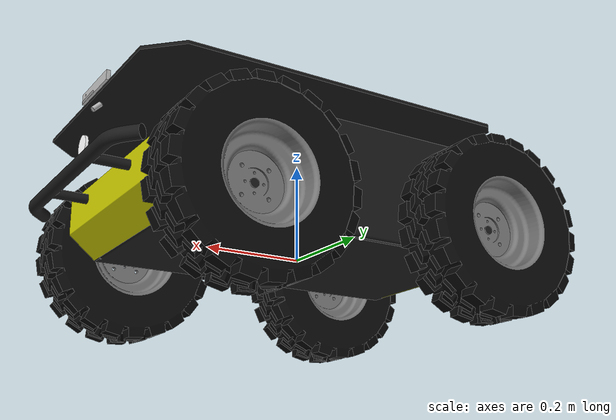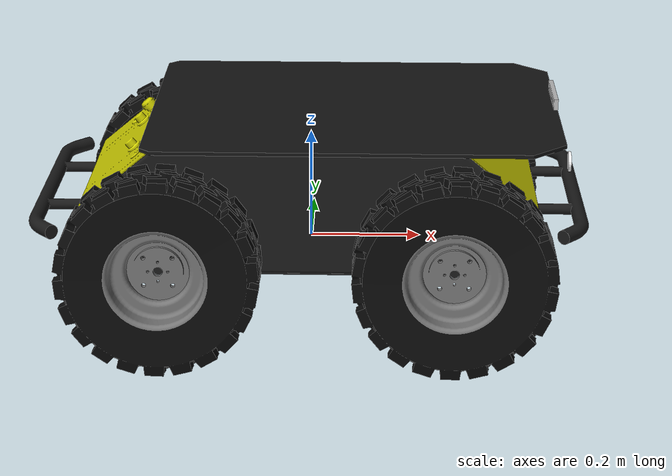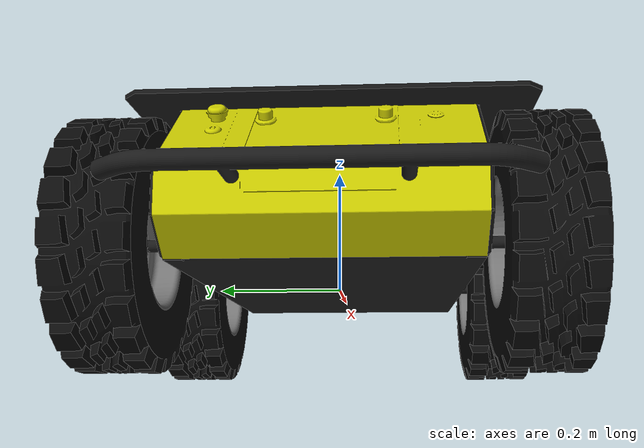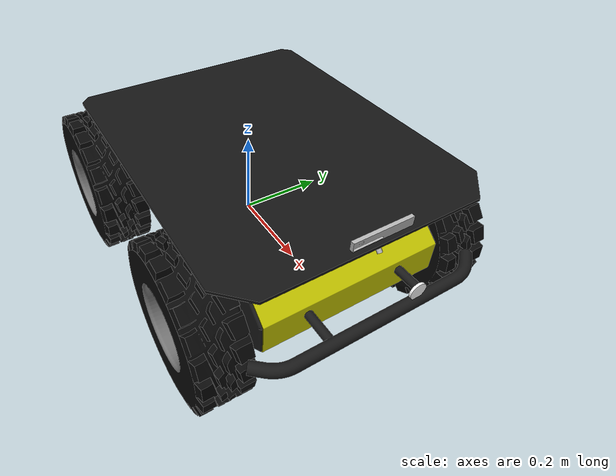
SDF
<?xml version="1.0" encoding="UTF-8"?>
<sdf version="1.8">
	<model name="igt_one">
		<link name="base_link">
			<pose>0 0 0 0 0 0</pose>
			<inertial>
				<pose>0 0 0.062329 0 0 0</pose>
				<mass>46.064</mass>
				<inertia>
					<ixx>0.615397</ixx>
					<ixy>-0.0240585</ixy>
					<ixz>-0.120749</ixz>
					<iyy>1.75388</iyy>
					<iyz>-0.0028322</iyz>
					<izz>2.03641</izz>
				</inertia>
			</inertial>

			<collision name="base_link_collision">
				<pose>0 0 0.12 0 0 0</pose>
				<geometry>
				<box>
					<size>0.9874 0.5709 0.05</size>
				</box>
				</geometry>
			</collision>

			<collision name="base_link_collision_bottom">
				<pose>0 0 0.046 0 0 0</pose>
				<geometry>
				<box>
					<size>0.80 0.5709 0.095</size>
				</box>
				</geometry>
			</collision>

			<collision name="base_link_collision_1">
				<pose>0 0 0.185625 0 0 0</pose>
				<geometry>
				<box>
					<size>0.78992 0.5709 0.12375</size>
				</box>
				</geometry>
			</collision>

			<collision name="base_link_fixed_joint_lump__lidar_collision_1">
				<pose>0 0 0 0 -0 0</pose>
				<geometry>
					<mesh>
						<scale>0.001 0.001 0.001</scale>
						<uri>model://igt_one/meshes/lidar.stl</uri>
					</mesh>
				</geometry>
				<surface>
					<contact>
						<ode/>
					</contact>
					<friction>
						<ode>
							<mu>1</mu>
							<mu2>1</mu2>
						</ode>
					</friction>
				</surface>
			</collision>

			<collision name="base_link_fixed_joint_lump__d435_link_collision_4">
				<pose>0 0 0.5125 0 -0 0</pose>
				<geometry>
					<box>
						<size>0.02505 0.09 0.025</size>
					</box>
				</geometry>
				<surface>
					<contact>
						<ode>
							<kp>1e+13</kp>
							<kd>1</kd>
						</ode>
					</contact>
					<friction>
						<ode>
							<mu2>1</mu2>
							<fdir1>0 0 0</fdir1>
						</ode>
					</friction>
				</surface>
			</collision>

			<collision name="base_link_fixed_joint_lump__camera/camera_link_collision_2">
				<pose>0.488 0 0.272 0 0 0</pose>
				<geometry>
				<box>
					<size>0.0078 0.13 0.0192</size>
				</box>
				</geometry>
				<surface>
				<contact>
					<ode>
					<kp>1e+13</kp>
					<kd>1</kd>
					</ode>
				</contact>
				<friction>
					<ode>
					<mu2>1</mu2>
					<fdir1>0 0 0</fdir1>
					</ode>
				</friction>
				</surface>
			</collision>

			<collision name="base_link_fixed_joint_lump__top_plate_link_collision_3">
				<pose>0.0812 0 0.245 0 0 0</pose>
				<geometry>
				<mesh>
					<scale>1 1 1</scale>
					<uri>file:///home/jasonwoo/colcon_ws/src/ros2-igt/igt_ignition/igt_one/meshes/top_plate.dae</uri>
				</mesh>
				</geometry>
			</collision>

			<collision name="base_link_fixed_joint_lump__top_plate_link_collision_4">
				<pose>0.0812 0 0.245 0 0 0</pose>
				<geometry>
				<box>
					<size>0.32 0.41 0.09</size>
				</box>
				</geometry>
			</collision>

			<visual name="base_link_visual">
				<pose>0 0 0 0 -0 0</pose>
				<geometry>
				<mesh>
					<scale>1 1 1</scale>
					<uri>file:///home/jasonwoo/colcon_ws/src/ros2-igt/igt_ignition/igt_one/meshes/base_link.dae</uri>
				</mesh>
				</geometry>
			</visual>

			<visual name="base_link_fixed_joint_lump__d435_link_visual_4">
				<pose>0.438 0 0.272 0 0 0</pose>
				<geometry>
				<mesh>
					<uri>file:///home/jasonwoo/colcon_ws/src/ros2-igt/igt_ignition/igt_one/meshes/realsense.dae</uri>
				</mesh>
				</geometry>
			</visual>

			<visual name="base_link_fixed_joint_lump__lidar_visual_1">
				<pose>0.435 0 0.235 -2.35619 0 -1.5708</pose>
				<geometry>
				<cylinder>
					<length>0.02</length>
					<radius>0.005</radius>
				</cylinder>
				</geometry>
			</visual>

			<visual name="base_link_fixed_joint_lump__front_bumper_link_visual_3">
				<pose>0.48 0 0.091 0 0 0</pose>
				<geometry>
				<mesh>
					<scale>1 1 1</scale>
					<uri>file:///home/jasonwoo/colcon_ws/src/ros2-igt/igt_ignition/igt_one/meshes/bumper.dae</uri>
				</mesh>
				</geometry>
			</visual>

			<visual name="base_link_fixed_joint_lump__rear_bumper_link_visual_4">
				<pose>-0.48 0 0.091 0 0 3.14159</pose>
				<geometry>
				<mesh>
					<scale>1 1 1</scale>
					<uri>file:///home/jasonwoo/colcon_ws/src/ros2-igt/igt_ignition/igt_one/meshes/bumper.dae</uri>
				</mesh>
				</geometry>
			</visual>

			<visual name="base_link_fixed_joint_lump__top_chassis_link_visual_5">
				<pose>0 0 0 0 -0 0</pose>
				<geometry>
				<mesh>
					<scale>1 1 1</scale>
					<uri>file:///home/jasonwoo/colcon_ws/src/ros2-igt/igt_ignition/igt_one/meshes/top_chassis.dae</uri>
				</mesh>
				</geometry>
			</visual>

			<visual name="base_link_fixed_joint_lump__top_plate_link_visual_6">
				<pose>0.0812 0 0.245 0 -0 0</pose>
				<geometry>
				<mesh>
					<scale>1 1 1</scale>
					<uri>file:///home/jasonwoo/colcon_ws/src/ros2-igt/igt_ignition/igt_one/meshes/top_plate.dae</uri>
				</mesh>
				</geometry>
			</visual>

			<sensor name="front_lidar" type="gpu_lidar">
				<pose>0.278738 0 0.475 0 0 0</pose>
				<topic>/model/igt_one/laserscan</topic>
				<visualize>0</visualize>
				<update_rate>10</update_rate>
				<always_on>1</always_on>
				<ray>
					<scan>
						<horizontal>
							<samples>720</samples>
							<resolution>1</resolution>
							<min_angle>-1.8326</min_angle>
							<max_angle>1.8326</max_angle>
						</horizontal>
					</scan>
					<range>
						<min>0.05</min>
						<max>20</max>
						<resolution>0.01</resolution>
					</range>
					<noise>
						<type>gaussian</type>
						<mean>0</mean>
						<stddev>0.01</stddev>
					</noise>
				</ray>
			</sensor>

			<sensor name="d435_color" type="camera">
				<always_on>1</always_on>
				<update_rate>30</update_rate>
				<visualize>1</visualize>
				<pose>0 0.0175 0.5125 0 -0 0</pose>
				<topic>/model/igt_one/color_camera</topic>
				<camera name="d435">
					<horizontal_fov>1.21126</horizontal_fov>
					<image>
						<width>640</width>
						<height>480</height>
						<format>RGB_INT8</format>
					</image>
					<clip>
						<near>0.1</near>
						<far>100</far>
					</clip>
					<noise>
						<type>gaussian</type>
						<mean>0</mean>
						<stddev>0.007</stddev>
					</noise>
				</camera>
			</sensor>

			<sensor name="d435_depth" type="depth_camera">
				<always_on>1</always_on>
				<update_rate>90</update_rate>
				<visualize>0</visualize>
				<topic>/model/igt_one/depth_camera</topic>
				<pose>0 0.0175 0.5125 0 -0 0</pose>
				<camera name="d435">
					<horizontal_fov>1.48702</horizontal_fov>
					<image>
						<width>1280</width>
						<height>720</height>
					</image>
					<clip>
						<near>0.1</near>
						<far>100</far>
					</clip>
					<noise>
						<type>gaussian</type>
						<mean>0</mean>
						<stddev>0.1</stddev>
					</noise>
				</camera>
			</sensor>

			<light name="flashlight_flashlight_light_source_lamp_light" type="spot">
				<pose>0.48 0.08 0.12 3.141592653589793 1.5707926535897934 -0.0015926535897931</pose>
				<attenuation>
					<range>50</range>
					<linear>0</linear>
					<constant>0.1</constant>
					<quadratic>0.0025</quadratic>
				</attenuation>
				<diffuse>0.8 0.8 0.5 1</diffuse>
				<specular>0.8 0.8 0.5 1</specular>
				<spot>
					<inner_angle>1.2</inner_angle>
					<outer_angle>1.3</outer_angle>
					<falloff>1</falloff>
				</spot>
				<direction>0 0 -1</direction>
			</light>

			<visual name="flashlight_flashlight_light_source_lamp_viz_visual">
				<pose>0.48 0.08 0.12 3.141592653589793 1.5707926535897934 -0.0015926535897931</pose>
				<geometry>
					<cylinder>
						<radius>0.019</radius>
						<length>0.005</length>
					</cylinder>
				</geometry>
				<transparency>0</transparency>
				<material>
					<ambient>1 1 1 1</ambient>
					<diffuse>1 1 1 1</diffuse>
					<specular>1 1 1 1</specular>
					<emissive>1 1 1 1</emissive>
				</material>
			</visual>
		</link>

		<link name="front_left_wheel">
			<pose>0.256 0.2854 0.03282 0 -0 0</pose>
			<inertial>
				<pose>0 0 0 0 -0 0</pose>
				<mass>2.637</mass>
				<inertia>
				<ixx>0.02467</ixx>
				<ixy>0</ixy>
				<ixz>0</ixz>
				<iyy>0.04411</iyy>
				<iyz>0</iyz>
				<izz>0.02467</izz>
				</inertia>
			</inertial>

			<collision name="front_left_wheel_link_collision">
				<pose>0 0 0 1.5707963267948966 -0 0</pose>
				<geometry>
				<cylinder>
					<length>0.1143</length>
					<radius>0.1651</radius>
				</cylinder>
				</geometry>
				<surface>
				<contact>
					<ode>
					<kp>1e+07</kp>
					<kd>1</kd>
					</ode>
				</contact>
				<friction>
					<ode>
					<mu>0.5</mu>
					<mu2>1</mu2>
					<slip1>0.00062</slip1>
					<slip2>0</slip2>
					<fdir1>0 0 1</fdir1>
					</ode>
				</friction>
				</surface>
			</collision>

			<visual name="front_left_wheel_link_visual">
				<pose>0 0 0 0 -0 0</pose>
				<geometry>
					<mesh>
						<scale>1 1 1</scale>
						<uri>file:///home/jasonwoo/colcon_ws/src/ros2-igt/igt_ignition/igt_one/meshes/wheel.dae</uri>
					</mesh>
				</geometry>
			</visual>
			<gravity>1</gravity>
		</link>

		<joint name="front_left_motor" type="revolute">
			<child>front_left_wheel</child>
			<parent>base_link</parent>
			<axis>
				<xyz>0 1 0</xyz>
				<limit>
				<lower>-1e+16</lower>
				<upper>1e+16</upper>
				</limit>
				<dynamics>
				<spring_reference>0</spring_reference>
				<spring_stiffness>0</spring_stiffness>
				</dynamics>
				<use_parent_model_frame>1</use_parent_model_frame>
			</axis>
		</joint>

		<link name="front_right_wheel">
			<pose>0.256 -0.2854 0.03282 0 -0 0</pose>
			<inertial>
				<pose>0 0 0 0 -0 0</pose>
				<mass>2.637</mass>
				<inertia>
				<ixx>0.02467</ixx>
				<ixy>0</ixy>
				<ixz>0</ixz>
				<iyy>0.04411</iyy>
				<iyz>0</iyz>
				<izz>0.02467</izz>
				</inertia>
			</inertial>

			<collision name="front_right_wheel_link_collision">
				<pose>0 0 0 1.5707963267948966 -0 0</pose>
				<geometry>
				<cylinder>
					<length>0.1143</length>
					<radius>0.1651</radius>
				</cylinder>
				</geometry>
				<surface>
				<contact>
					<ode>
					<kp>1e+07</kp>
					<kd>1</kd>
					</ode>
				</contact>
				<friction>
					<ode>
					<mu>0.5</mu>
					<mu2>1</mu2>
					<slip1>0.00062</slip1>
					<slip2>0</slip2>
					<fdir1>0 0 1</fdir1>
					</ode>
				</friction>
				</surface>
			</collision>

			<visual name="front_right_wheel_link_visual">
				<pose>0 0 0 0 -0 0</pose>
				<geometry>
				<mesh>
					<scale>1 1 1</scale>
					<uri>file:///home/jasonwoo/colcon_ws/src/ros2-igt/igt_ignition/igt_one/meshes/wheel.dae</uri>
				</mesh>
				</geometry>
			</visual>
			<gravity>1</gravity>
		</link>

		<joint name="front_right_motor" type="revolute">
			<child>front_right_wheel</child>
			<parent>base_link</parent>
			<axis>
				<xyz>0 1 0</xyz>
				<limit>
				<lower>-1e+16</lower>
				<upper>1e+16</upper>
				</limit>
				<dynamics>
				<spring_reference>0</spring_reference>
				<spring_stiffness>0</spring_stiffness>
				</dynamics>
				<use_parent_model_frame>1</use_parent_model_frame>
			</axis>
		</joint>

		<link name="rear_left_wheel">
			<pose>-0.256 0.2854 0.03282 0 -0 0</pose>
			<inertial>
				<pose>0 0 0 0 -0 0</pose>
				<mass>2.637</mass>
				<inertia>
				<ixx>0.02467</ixx>
				<ixy>0</ixy>
				<ixz>0</ixz>
				<iyy>0.04411</iyy>
				<iyz>0</iyz>
				<izz>0.02467</izz>
				</inertia>
			</inertial>

			<collision name="rear_left_wheel_link_collision">
				<pose>0 0 0 1.5707963267948966 -0 0</pose>
				<geometry>
				<cylinder>
					<length>0.1143</length>
					<radius>0.1651</radius>
				</cylinder>
				</geometry>
				<surface>
				<contact>
					<ode>
					<kp>1e+07</kp>
					<kd>1</kd>
					</ode>
				</contact>
				<friction>
					<ode>
					<mu>0.5</mu>
					<mu2>1</mu2>
					<slip1>0.00062</slip1>
					<slip2>0</slip2>
					<fdir1>0 0 1</fdir1>
					</ode>
				</friction>
				</surface>
			</collision>

			<visual name="rear_left_wheel_link_visual">
				<pose>0 0 0 0 -0 0</pose>
				<geometry>
				<mesh>
					<scale>1 1 1</scale>
					<uri>file:///home/jasonwoo/colcon_ws/src/ros2-igt/igt_ignition/igt_one/meshes/wheel.dae</uri>
				</mesh>
				</geometry>
			</visual>
			<gravity>1</gravity>
		</link>

		<joint name="rear_left_motor" type="revolute">
			<child>rear_left_wheel</child>
			<parent>base_link</parent>
			<axis>
				<xyz>0 1 0</xyz>
				<limit>
				<lower>-1e+16</lower>
				<upper>1e+16</upper>
				</limit>
				<dynamics>
					<spring_reference>0</spring_reference>
					<spring_stiffness>0</spring_stiffness>
				</dynamics>
				<use_parent_model_frame>1</use_parent_model_frame>
			</axis>
		</joint>

		<link name="rear_right_wheel">
			<pose >-0.256 -0.2854 0.03282 0 -0 0</pose>
			<inertial>
				<pose>0 0 0 0 -0 0</pose>
				<mass>2.637</mass>
				<inertia>
				<ixx>0.02467</ixx>
				<ixy>0</ixy>
				<ixz>0</ixz>
				<iyy>0.04411</iyy>
				<iyz>0</iyz>
				<izz>0.02467</izz>
				</inertia>
			</inertial>

			<collision name="rear_right_wheel_link_collision">
				<pose>0 0 0 1.5707963267948966 -0 0</pose>
				<geometry>
				<cylinder>
					<length>0.1143</length>
					<radius>0.1651</radius>
				</cylinder>
				</geometry>
				<surface>
				<contact>
					<ode>
					<kp>1e+07</kp>
					<kd>1</kd>
					</ode>
				</contact>
				<friction>
					<ode>
					<mu>0.5</mu>
					<mu2>1</mu2>
					<slip1>0.00062</slip1>
					<slip2>0</slip2>
					<fdir1>0 0 1</fdir1>
					</ode>
				</friction>
				</surface>
			</collision>

			<visual name="rear_right_wheel_link_visual">
				<pose>0 0 0 0 -0 0</pose>
				<geometry>
				<mesh>
					<scale>1 1 1</scale>
					<uri>file:///home/jasonwoo/colcon_ws/src/ros2-igt/igt_ignition/igt_one/meshes/wheel.dae</uri>
				</mesh>
				</geometry>
			</visual>
			<gravity>1</gravity>
		</link>

		<joint name="rear_right_motor" type="revolute">
			<child>rear_right_wheel</child>
			<parent>base_link</parent>
			<axis>
				<xyz>0 1 0</xyz>
				<limit>
				<lower>-1e+16</lower>
				<upper>1e+16</upper>
				</limit>
				<dynamics>
				<spring_reference>0</spring_reference>
				<spring_stiffness>0</spring_stiffness>
				</dynamics>
				<use_parent_model_frame>1</use_parent_model_frame>
			</axis>
		</joint>

		<plugin filename="libignition-gazebo-joint-state-publisher-system.so"
				name="ignition::gazebo::systems::JointStatePublisher">
		</plugin>

		<plugin filename="ignition-gazebo-diff-drive-system"
				name="ignition::gazebo::systems::DiffDrive">
			<update_rate>30</update_rate>

			<num_wheel_pairs>2</num_wheel_pairs>
			<left_joint>front_left_motor</left_joint>
			<right_joint>front_right_motor</right_joint>
			<left_joint>rear_left_motor</left_joint>
			<right_joint>rear_right_motor</right_joint>

			<wheel_separation>0.57</wheel_separation>
			<wheel_radius>0.165</wheel_radius>

			<frame_id>odom</frame_id>
			<child_frame_id>base_link</child_frame_id>
			<topic>cmd_vel</topic>
			<odom_publish_frequency>1</odom_publish_frequency>
			<publishWheelTF>false</publishWheelTF>
			<publishOdom>true</publishOdom>

		</plugin>

	</model>
</sdf>
